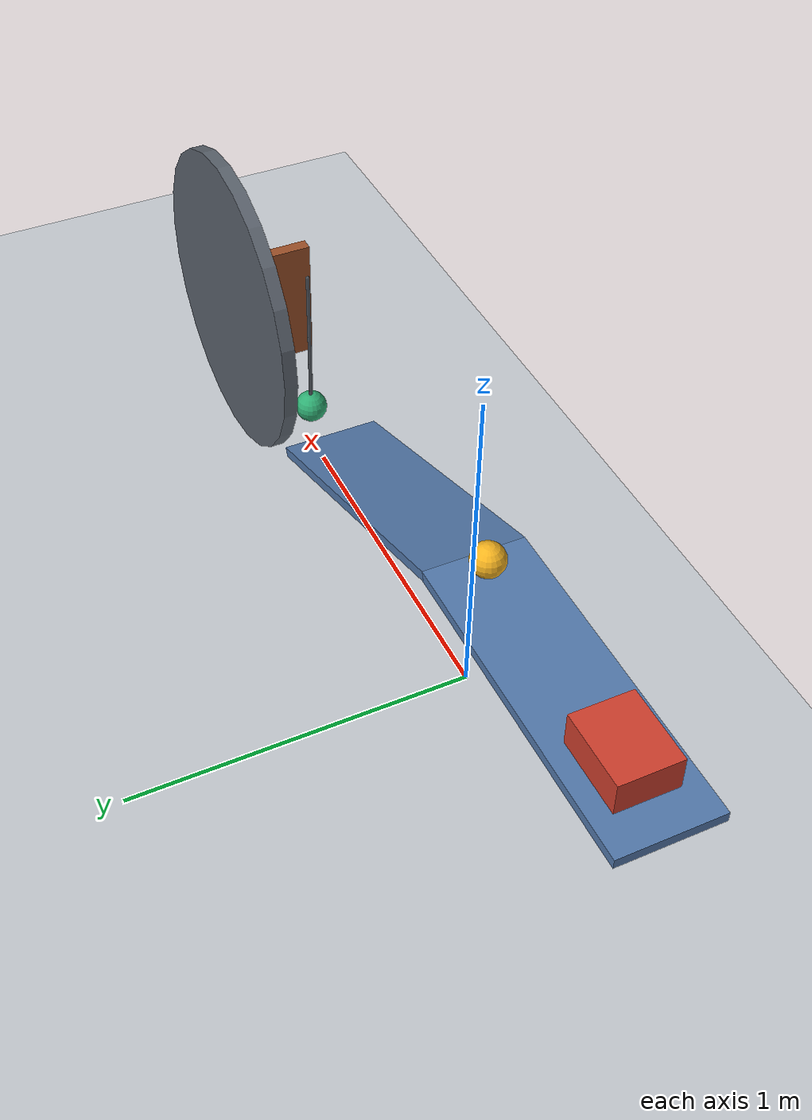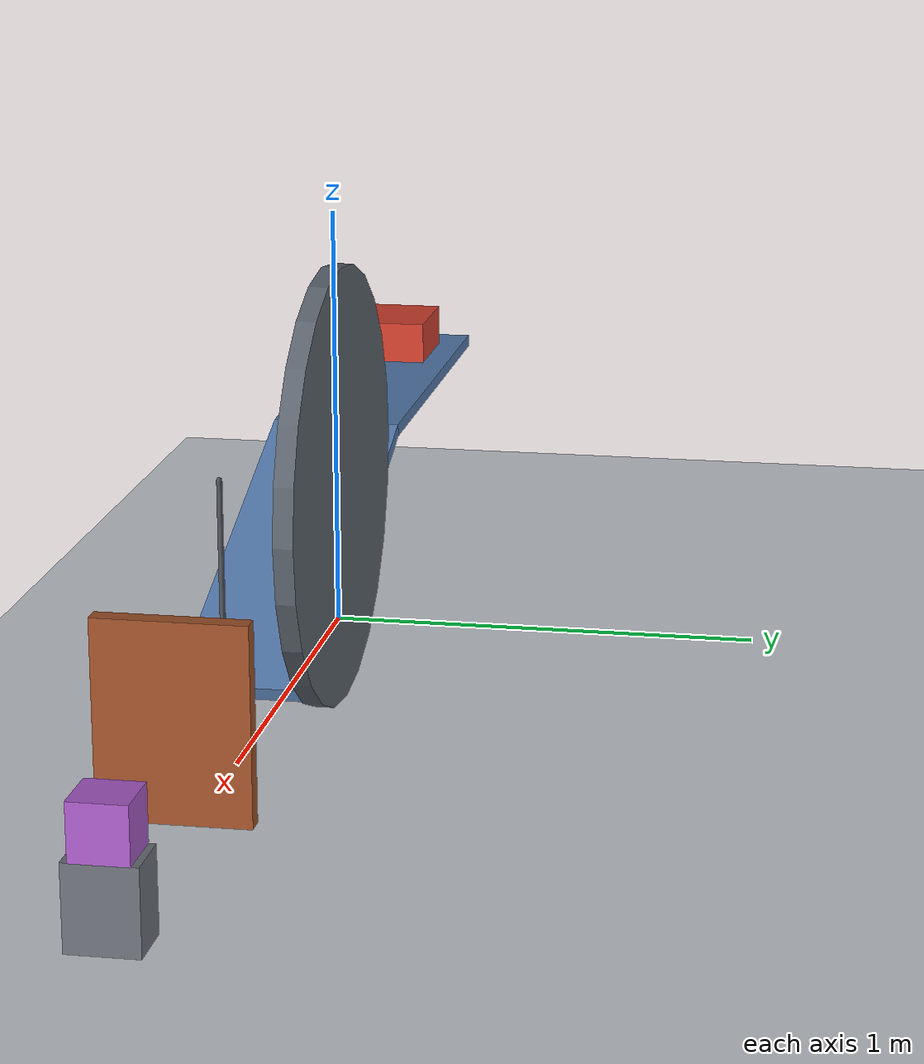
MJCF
<mujoco model="spring_ramp_pendulum_door">
  <compiler angle="degree" autolimits="true" inertiafromgeom="true"/>
  <option timestep="0.002" gravity="0 0 -9.81" integrator="implicitfast" solver="Newton" iterations="100" cone="elliptic"/>
  <size nconmax="200" njmax="1000"/>
  <statistic center="0.6 0 0.4" extent="2.5"/>

  <visual>
    <headlight ambient="0.35 0.35 0.35" diffuse="0.65 0.65 0.65" specular="0.15 0.15 0.15"/>
  </visual>

  <worldbody>
    <light name="main_light" pos="0 -2 4" dir="0 0 -1"/>
    <camera name="overview" pos="3 -5 2.8" xyaxes="0.857493 0.514496 0 -0.205799 0.342998 0.916515"/>

    <!-- Sliding friction is 0.68. The remaining coefficients provide spin and rolling resistance. -->
    <geom name="floor" type="plane" size="4 3 0.1" friction="0.68 0.005 0.003" solref="0.01 0.690107" solimp="0.95 0.99 0.001" rgba="0.78 0.80 0.82 1"/>

    <!-- The ramp's upper surface is 1.00 m long, 0.30 m wide, and inclined at 20 degrees. -->
    <!-- Its low-end upper surface is at x=0.9396926208, z=0.15. -->
    <body name="ramp1" pos="0.4698463104 0 0.3210100717" quat="0.9848077530 0 0.1736481777 0">
      <geom name="ramp1_surface" type="box" pos="0 0 -0.015" size="0.50 0.15 0.015" friction="0.68 0.005 0.003" solref="0.01 0.690107" solimp="0.95 0.99 0.001" rgba="0.33 0.48 0.68 1"/>
    </body>

    <!-- A level high-end landing keeps ball1 stationary until cart1 arrives. -->
    <body name="launch_landing" pos="-0.475 0 0.4770201433">
      <geom name="launch_landing_surface" type="box" size="0.475 0.15 0.015" friction="0.68 0.005 0.003" solref="0.01 0.690107" solimp="0.95 0.99 0.001" rgba="0.33 0.48 0.68 1"/>
    </body>

    <body name="block1_plinth" pos="1.9403575637 0 0.09">
      <geom name="block1_plinth_surface" type="box" size="0.058 0.075 0.09" friction="0.68 0.005 0.003" solref="0.01 0.690107" solimp="0.95 0.99 0.001" rgba="0.42 0.44 0.47 1"/>
    </body>

    <!-- The slide joint supplies the cart's ideal axial guide. -->
    <!-- Collision masks let the guided cart contact ball1 without rubbing the landing. -->
    <!-- Initially, the cart's front face is exactly 0.50 m from ball1's rear surface. -->
    <body name="cart1" pos="-0.735 0 0.5420201433">
      <joint name="cart1_slide" type="slide" axis="1 0 0" damping="0.20" limited="true" range="0 0.80" solreflimit="0.004 0.690107" solimplimit="0.99 0.999 0.001"/>
      <geom name="cart1_chassis" type="box" size="0.11 0.09 0.05" mass="0.50" contype="2" conaffinity="0" friction="0.68 0.005 0.003" solref="0.01 0.690107" solimp="0.95 0.99 0.001" rgba="0.82 0.25 0.18 1"/>
    </body>

    <body name="ball1" pos="-0.075 0 0.5420201433">
      <freejoint name="ball1_free"/>
      <geom name="ball1_sphere" type="sphere" size="0.05" mass="0.20" contype="1" conaffinity="3" friction="0.68 0.005 0.003" solref="0.01 0.690107" solimp="0.95 0.99 0.001" rgba="0.96 0.70 0.12 1"/>
    </body>

    <!-- Pivot-to-bob distance is 0.50 m; total rigid-body mass is 0.35 kg. -->
    <!-- An offset, balanced hub provides inertia without adding gravitational swing resistance. -->
    <!-- The clear horizontal gap from the ramp end to the resting bob surface is 0.10 m. -->
    <!-- Negative hinge rotation is clockwise when viewed from the positive hinge-axis side. -->
    <body name="pendulum1" pos="1.0896926208 0 0.65">
      <joint name="pendulum1_hinge" type="hinge" axis="0 1 0" damping="0.04" limited="true" range="-85 10" solreflimit="0.004 0.690107" solimplimit="0.99 0.999 0.001"/>
      <geom name="pendulum1_hub" type="cylinder" pos="0 0.24 0" quat="0.7071067812 0.7071067812 0 0" size="0.45 0.02" mass="0.32" friction="0.68 0.005 0.003" solref="0.01 0.690107" solimp="0.95 0.99 0.001" rgba="0.36 0.39 0.43 1"/>
      <geom name="pendulum1_rod" type="capsule" fromto="0 0 0 0 0 -0.50" size="0.006" mass="0.01" friction="0.68 0.005 0.003" solref="0.01 0.690107" solimp="0.95 0.99 0.001" rgba="0.30 0.32 0.35 1"/>
      <geom name="pendulum1_bob" type="sphere" pos="0 0 -0.50" size="0.05" mass="0.02" friction="0.68 0.005 0.003" solref="0.01 0.690107" solimp="0.95 0.99 0.001" rgba="0.18 0.68 0.45 1"/>
    </body>

    <!-- The upright, bottom-hinged door starts at an unstable gravitational equilibrium. -->
    <!-- Its near face is tangent to the pendulum bob at a 40-degree clockwise swing. -->
    <!-- After the impact, gravity assists its clockwise fall to the 70-degree hard stop. -->
    <body name="door1" pos="1.4810864256 0 0.06">
      <joint name="door1_hinge" type="hinge" axis="0 -1 0" damping="0.04" limited="true" range="-70 0" solreflimit="0.004 0.690107" solimplimit="0.99 0.999 0.0005"/>
      <geom name="door1_panel" type="box" pos="0 0 0.21" size="0.02 0.16 0.21" mass="0.45" friction="0.68 0.005 0.003" solref="0.01 0.690107" solimp="0.95 0.99 0.001" rgba="0.62 0.32 0.16 1"/>
    </body>

    <!-- Contact begins near 69 degrees, immediately before the door reaches its stop. -->
    <body name="block1" pos="1.9403575637 0 0.24">
      <freejoint name="block1_free"/>
      <geom name="block1_cube" type="box" size="0.06 0.06 0.06" mass="0.35" friction="0.68 0.005 0.003" solref="0.01 0.690107" solimp="0.95 0.99 0.001" rgba="0.66 0.35 0.78 1"/>
    </body>
  </worldbody>

  <tendon>
    <!-- Compression-only axial spring: initially compressed 0.20 m. -->
    <!-- It becomes unloaded after expansion, allowing the cart to coast the remaining distance. -->
    <fixed name="cart1_axial_spring" stiffness="18" damping="0" springlength="0.20 2.00">
      <joint joint="cart1_slide" coef="1"/>
    </fixed>
  </tendon>

  <keyframe>
    <key name="start" time="0" qpos="0 -0.075 0 0.5420201433 1 0 0 0 0 0 1.9403575637 0 0.24 1 0 0 0" qvel="0 0 0 0 0 0 0 0 0 0 0 0 0 0 0"/>
  </keyframe>
</mujoco>
